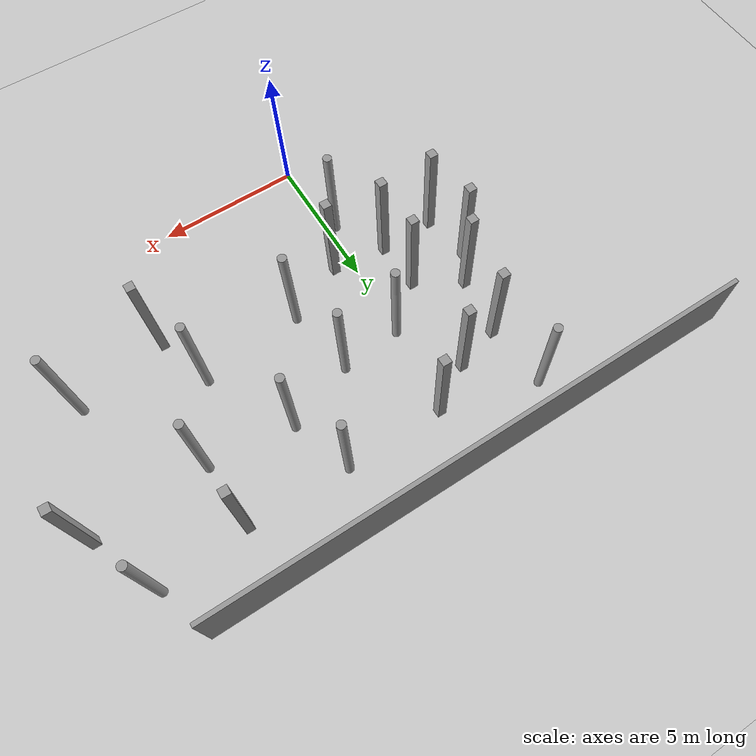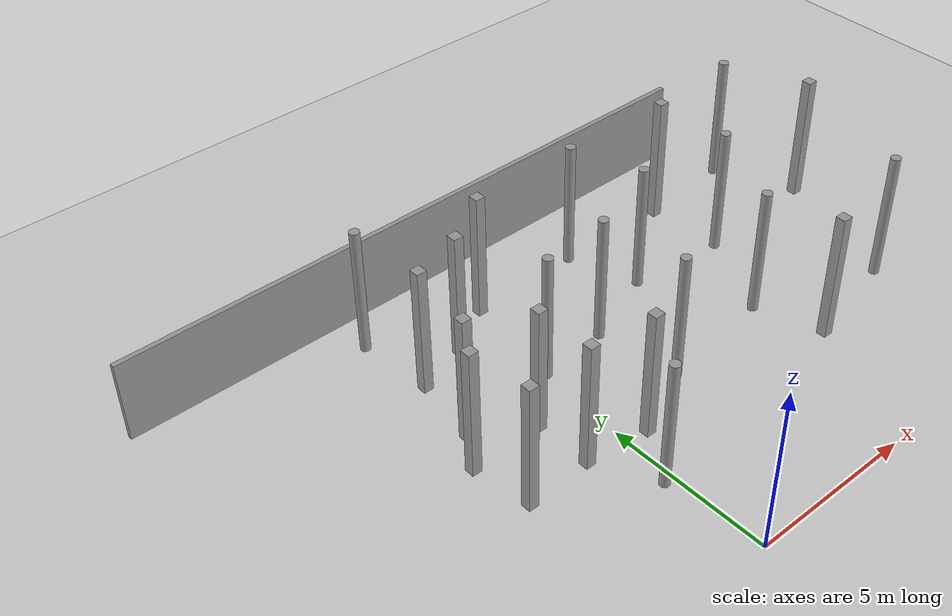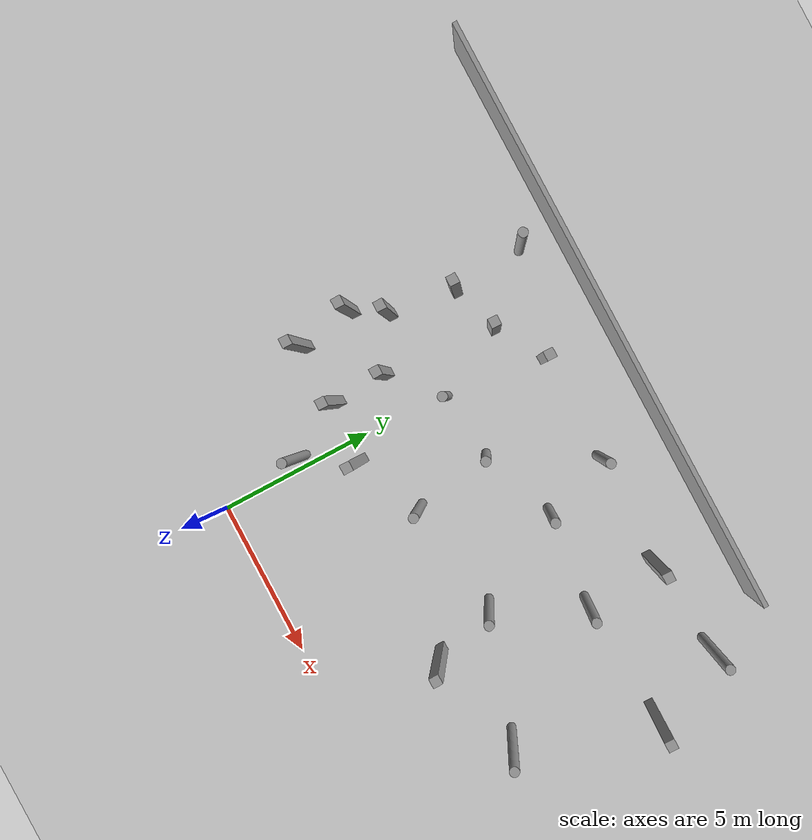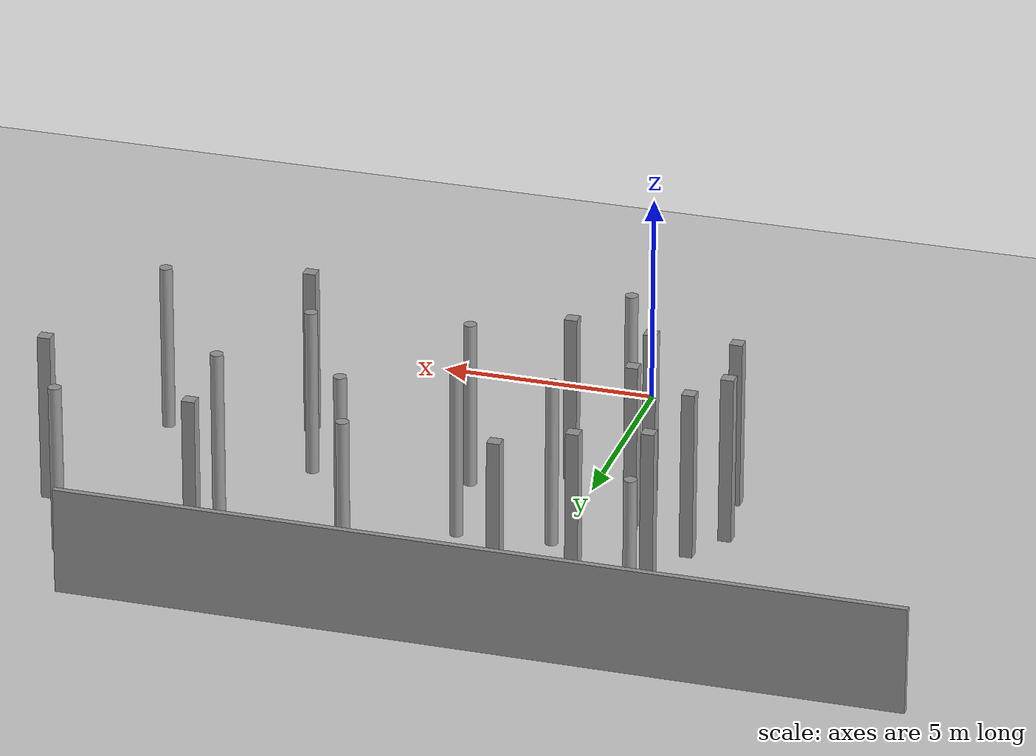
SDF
<sdf version="1.6">
 <world name="default">
  <model name="ground_plane">
   <static>1</static>
   <link name="link">
    <collision name="collision">
     <geometry><plane><normal>0 0 1</normal><size>100 100</size></plane></geometry>
    </collision>
    <visual name="visual">
     <cast_shadows>0</cast_shadows>
     <geometry><plane><normal>0 0 1</normal><size>100 100</size></plane></geometry>
     <material>
      <script><uri>file://media/materials/scripts/gazebo.material</uri><name>Gazebo/Gray</name></script>
     </material>
    </visual>
   </link>
  </model>
  <model name="unit_box">
   <link name="link">
    <inertial>
     <mass>1000</mass>
     <inertia><ixx>166.667</ixx><ixy>0</ixy><ixz>0</ixz><iyy>166.667</iyy><iyz>0</iyz><izz>166.667</izz></inertia>
    </inertial>
    <visual name="visual">
     <geometry><box><size>0.3 0.3 4</size></box></geometry>
     <material>
      <script><name>Gazebo/Grey</name><uri>file://media/materials/scripts/gazebo.material</uri></script>
      <shader type="vertex"><normal_map>__default__</normal_map></shader>
      <ambient>0.3 0.3 0.3 1</ambient>
      <diffuse>0.7 0.7 0.7 1</diffuse>
      <specular>0.01 0.01 0.01 1</specular>
      <emissive>0 0 0 1</emissive>
     </material>
    </visual>
    <collision name="collision">
     <geometry><box><size>0.3 0.3 4</size></box></geometry>
     <surface>
      <friction>
       <ode><mu>1</mu><mu2>1</mu2><fdir1>0 0 0</fdir1><slip1>0</slip1><slip2>0</slip2></ode>
       <torsional>
        <coefficient>1</coefficient>
        <patch_radius>0</patch_radius>
        <surface_radius>0</surface_radius>
        <use_patch_radius>1</use_patch_radius>
        <ode><slip>0</slip></ode>
       </torsional>
      </friction>
      <bounce><restitution_coefficient>0</restitution_coefficient><threshold>1e+06</threshold></bounce>
      <contact>
       <collide_without_contact>0</collide_without_contact>
       <collide_without_contact_bitmask>1</collide_without_contact_bitmask>
       <collide_bitmask>1</collide_bitmask>
       <ode>
        <soft_cfm>0</soft_cfm>
        <soft_erp>0.2</soft_erp>
        <kp>1e+13</kp>
        <kd>1</kd>
        <max_vel>0.01</max_vel>
        <min_depth>0</min_depth>
       </ode>
       <bullet>
        <split_impulse>1</split_impulse>
        <split_impulse_penetration_threshold>-0.01</split_impulse_penetration_threshold>
        <soft_cfm>0</soft_cfm>
        <soft_erp>0.2</soft_erp>
        <kp>1e+13</kp>
        <kd>1</kd>
       </bullet>
      </contact>
     </surface>
    </collision>
   </link>
   <static>0</static>
   <pose>-1.26728 4.71524 2 -8e-06 2e-06 -0.001346</pose>
  </model>
  <model name="unit_box_clone_1">
   <link name="link">
    <inertial>
     <mass>1000</mass>
     <inertia><ixx>166.667</ixx><ixy>0</ixy><ixz>0</ixz><iyy>166.667</iyy><iyz>0</iyz><izz>166.667</izz></inertia>
    </inertial>
    <visual name="visual">
     <geometry><box><size>0.3 0.3 4</size></box></geometry>
     <material>
      <script><name>Gazebo/Grey</name><uri>file://media/materials/scripts/gazebo.material</uri></script>
      <shader type="vertex"><normal_map>__default__</normal_map></shader>
      <ambient>0.3 0.3 0.3 1</ambient>
      <diffuse>0.7 0.7 0.7 1</diffuse>
      <specular>0.01 0.01 0.01 1</specular>
      <emissive>0 0 0 1</emissive>
     </material>
    </visual>
    <collision name="collision">
     <geometry><box><size>0.3 0.3 4</size></box></geometry>
     <surface>
      <friction>
       <ode><mu>1</mu><mu2>1</mu2><fdir1>0 0 0</fdir1><slip1>0</slip1><slip2>0</slip2></ode>
       <torsional>
        <coefficient>1</coefficient>
        <patch_radius>0</patch_radius>
        <surface_radius>0</surface_radius>
        <use_patch_radius>1</use_patch_radius>
        <ode><slip>0</slip></ode>
       </torsional>
      </friction>
      <bounce><restitution_coefficient>0</restitution_coefficient><threshold>1e+06</threshold></bounce>
      <contact>
       <collide_without_contact>0</collide_without_contact>
       <collide_without_contact_bitmask>1</collide_without_contact_bitmask>
       <collide_bitmask>1</collide_bitmask>
       <ode>
        <soft_cfm>0</soft_cfm>
        <soft_erp>0.2</soft_erp>
        <kp>1e+13</kp>
        <kd>1</kd>
        <max_vel>0.01</max_vel>
        <min_depth>0</min_depth>
       </ode>
       <bullet>
        <split_impulse>1</split_impulse>
        <split_impulse_penetration_threshold>-0.01</split_impulse_penetration_threshold>
        <soft_cfm>0</soft_cfm>
        <soft_erp>0.2</soft_erp>
        <kp>1e+13</kp>
        <kd>1</kd>
       </bullet>
      </contact>
     </surface>
    </collision>
   </link>
   <static>0</static>
   <pose>-2.89926 7.41393 2 1.2e-05 -1.2e-05 -0.004598</pose>
  </model>
  <model name="unit_box_clone_5">
   <link name="link">
    <inertial>
     <mass>1000</mass>
     <inertia><ixx>166.667</ixx><ixy>0</ixy><ixz>0</ixz><iyy>166.667</iyy><iyz>0</iyz><izz>166.667</izz></inertia>
    </inertial>
    <visual name="visual">
     <geometry><box><size>0.3 0.3 4</size></box></geometry>
     <material>
      <script><name>Gazebo/Grey</name><uri>file://media/materials/scripts/gazebo.material</uri></script>
      <shader type="vertex"><normal_map>__default__</normal_map></shader>
      <ambient>0.3 0.3 0.3 1</ambient>
      <diffuse>0.7 0.7 0.7 1</diffuse>
      <specular>0.01 0.01 0.01 1</specular>
      <emissive>0 0 0 1</emissive>
     </material>
    </visual>
    <collision name="collision">
     <geometry><box><size>0.3 0.3 4</size></box></geometry>
     <surface>
      <friction>
       <ode><mu>1</mu><mu2>1</mu2><fdir1>0 0 0</fdir1><slip1>0</slip1><slip2>0</slip2></ode>
       <torsional>
        <coefficient>1</coefficient>
        <patch_radius>0</patch_radius>
        <surface_radius>0</surface_radius>
        <use_patch_radius>1</use_patch_radius>
        <ode><slip>0</slip></ode>
       </torsional>
      </friction>
      <bounce><restitution_coefficient>0</restitution_coefficient><threshold>1e+06</threshold></bounce>
      <contact>
       <collide_without_contact>0</collide_without_contact>
       <collide_without_contact_bitmask>1</collide_without_contact_bitmask>
       <collide_bitmask>1</collide_bitmask>
       <ode>
        <soft_cfm>0</soft_cfm>
        <soft_erp>0.2</soft_erp>
        <kp>1e+13</kp>
        <kd>1</kd>
        <max_vel>0.01</max_vel>
        <min_depth>0</min_depth>
       </ode>
       <bullet>
        <split_impulse>1</split_impulse>
        <split_impulse_penetration_threshold>-0.01</split_impulse_penetration_threshold>
        <soft_cfm>0</soft_cfm>
        <soft_erp>0.2</soft_erp>
        <kp>1e+13</kp>
        <kd>1</kd>
       </bullet>
      </contact>
     </surface>
    </collision>
   </link>
   <static>0</static>
   <pose>7.51087 10.9218 2 -6e-06 -0 -0.013801</pose>
  </model>
  <model name="unit_box_clone_6">
   <link name="link">
    <inertial>
     <mass>1000</mass>
     <inertia><ixx>166.667</ixx><ixy>0</ixy><ixz>0</ixz><iyy>166.667</iyy><iyz>0</iyz><izz>166.667</izz></inertia>
    </inertial>
    <visual name="visual">
     <geometry><box><size>0.3 0.3 4</size></box></geometry>
     <material>
      <script><name>Gazebo/Grey</name><uri>file://media/materials/scripts/gazebo.material</uri></script>
      <shader type="vertex"><normal_map>__default__</normal_map></shader>
      <ambient>0.3 0.3 0.3 1</ambient>
      <diffuse>0.7 0.7 0.7 1</diffuse>
      <specular>0.01 0.01 0.01 1</specular>
      <emissive>0 0 0 1</emissive>
     </material>
    </visual>
    <collision name="collision">
     <geometry><box><size>0.3 0.3 4</size></box></geometry>
     <surface>
      <friction>
       <ode><mu>1</mu><mu2>1</mu2><fdir1>0 0 0</fdir1><slip1>0</slip1><slip2>0</slip2></ode>
       <torsional>
        <coefficient>1</coefficient>
        <patch_radius>0</patch_radius>
        <surface_radius>0</surface_radius>
        <use_patch_radius>1</use_patch_radius>
        <ode><slip>0</slip></ode>
       </torsional>
      </friction>
      <bounce><restitution_coefficient>0</restitution_coefficient><threshold>1e+06</threshold></bounce>
      <contact>
       <collide_without_contact>0</collide_without_contact>
       <collide_without_contact_bitmask>1</collide_without_contact_bitmask>
       <collide_bitmask>1</collide_bitmask>
       <ode>
        <soft_cfm>0</soft_cfm>
        <soft_erp>0.2</soft_erp>
        <kp>1e+13</kp>
        <kd>1</kd>
        <max_vel>0.01</max_vel>
        <min_depth>0</min_depth>
       </ode>
       <bullet>
        <split_impulse>1</split_impulse>
        <split_impulse_penetration_threshold>-0.01</split_impulse_penetration_threshold>
        <soft_cfm>0</soft_cfm>
        <soft_erp>0.2</soft_erp>
        <kp>1e+13</kp>
        <kd>1</kd>
       </bullet>
      </contact>
     </surface>
    </collision>
   </link>
   <static>0</static>
   <pose>11.6419 8.80512 2 -2.9e-05 -0 -0.005214</pose>
  </model>
  <model name="unit_box_clone_19">
   <link name="link">
    <inertial>
     <mass>1000</mass>
     <inertia><ixx>166.667</ixx><ixy>0</ixy><ixz>0</ixz><iyy>166.667</iyy><iyz>0</iyz><izz>166.667</izz></inertia>
    </inertial>
    <visual name="visual">
     <geometry><box><size>0.3 0.3 4</size></box></geometry>
     <material>
      <script><name>Gazebo/Grey</name><uri>file://media/materials/scripts/gazebo.material</uri></script>
      <shader type="vertex"><normal_map>__default__</normal_map></shader>
      <ambient>0.3 0.3 0.3 1</ambient>
      <diffuse>0.7 0.7 0.7 1</diffuse>
      <specular>0.01 0.01 0.01 1</specular>
      <emissive>0 0 0 1</emissive>
     </material>
    </visual>
    <collision name="collision">
     <geometry><box><size>0.3 0.3 4</size></box></geometry>
     <surface>
      <friction>
       <ode><mu>1</mu><mu2>1</mu2><fdir1>0 0 0</fdir1><slip1>0</slip1><slip2>0</slip2></ode>
       <torsional>
        <coefficient>1</coefficient>
        <patch_radius>0</patch_radius>
        <surface_radius>0</surface_radius>
        <use_patch_radius>1</use_patch_radius>
        <ode><slip>0</slip></ode>
       </torsional>
      </friction>
      <bounce><restitution_coefficient>0</restitution_coefficient><threshold>1e+06</threshold></bounce>
      <contact>
       <collide_without_contact>0</collide_without_contact>
       <collide_without_contact_bitmask>1</collide_without_contact_bitmask>
       <collide_bitmask>1</collide_bitmask>
       <ode>
        <soft_cfm>0</soft_cfm>
        <soft_erp>0.2</soft_erp>
        <kp>1e+13</kp>
        <kd>1</kd>
        <max_vel>0.01</max_vel>
        <min_depth>0</min_depth>
       </ode>
       <bullet>
        <split_impulse>1</split_impulse>
        <split_impulse_penetration_threshold>-0.01</split_impulse_penetration_threshold>
        <soft_cfm>0</soft_cfm>
        <soft_erp>0.2</soft_erp>
        <kp>1e+13</kp>
        <kd>1</kd>
       </bullet>
      </contact>
     </surface>
    </collision>
   </link>
   <static>0</static>
   <pose>-1.32795 6.44933 2 -8e-06 2e-06 -0.001346</pose>
  </model>
  <model name="unit_box_clone_20">
   <link name="link">
    <inertial>
     <mass>1000</mass>
     <inertia><ixx>166.667</ixx><ixy>0</ixy><ixz>0</ixz><iyy>166.667</iyy><iyz>0</iyz><izz>166.667</izz></inertia>
    </inertial>
    <visual name="visual">
     <geometry><box><size>0.3 0.3 4</size></box></geometry>
     <material>
      <script><name>Gazebo/Grey</name><uri>file://media/materials/scripts/gazebo.material</uri></script>
      <shader type="vertex"><normal_map>__default__</normal_map></shader>
      <ambient>0.3 0.3 0.3 1</ambient>
      <diffuse>0.7 0.7 0.7 1</diffuse>
      <specular>0.01 0.01 0.01 1</specular>
      <emissive>0 0 0 1</emissive>
     </material>
    </visual>
    <collision name="collision">
     <geometry><box><size>0.3 0.3 4</size></box></geometry>
     <surface>
      <friction>
       <ode><mu>1</mu><mu2>1</mu2><fdir1>0 0 0</fdir1><slip1>0</slip1><slip2>0</slip2></ode>
       <torsional>
        <coefficient>1</coefficient>
        <patch_radius>0</patch_radius>
        <surface_radius>0</surface_radius>
        <use_patch_radius>1</use_patch_radius>
        <ode><slip>0</slip></ode>
       </torsional>
      </friction>
      <bounce><restitution_coefficient>0</restitution_coefficient><threshold>1e+06</threshold></bounce>
      <contact>
       <collide_without_contact>0</collide_without_contact>
       <collide_without_contact_bitmask>1</collide_without_contact_bitmask>
       <collide_bitmask>1</collide_bitmask>
       <ode>
        <soft_cfm>0</soft_cfm>
        <soft_erp>0.2</soft_erp>
        <kp>1e+13</kp>
        <kd>1</kd>
        <max_vel>0.01</max_vel>
        <min_depth>0</min_depth>
       </ode>
       <bullet>
        <split_impulse>1</split_impulse>
        <split_impulse_penetration_threshold>-0.01</split_impulse_penetration_threshold>
        <soft_cfm>0</soft_cfm>
        <soft_erp>0.2</soft_erp>
        <kp>1e+13</kp>
        <kd>1</kd>
       </bullet>
      </contact>
     </surface>
    </collision>
   </link>
   <static>0</static>
   <pose>0.641894 4.48444 2 9e-06 1e-06 0.001867</pose>
  </model>
  <model name="unit_box_clone_21">
   <link name="link">
    <inertial>
     <mass>1000</mass>
     <inertia><ixx>166.667</ixx><ixy>0</ixy><ixz>0</ixz><iyy>166.667</iyy><iyz>0</iyz><izz>166.667</izz></inertia>
    </inertial>
    <visual name="visual">
     <geometry><box><size>0.3 0.3 4</size></box></geometry>
     <material>
      <script><name>Gazebo/Grey</name><uri>file://media/materials/scripts/gazebo.material</uri></script>
      <shader type="vertex"><normal_map>__default__</normal_map></shader>
      <ambient>0.3 0.3 0.3 1</ambient>
      <diffuse>0.7 0.7 0.7 1</diffuse>
      <specular>0.01 0.01 0.01 1</specular>
      <emissive>0 0 0 1</emissive>
     </material>
    </visual>
    <collision name="collision">
     <geometry><box><size>0.3 0.3 4</size></box></geometry>
     <surface>
      <friction>
       <ode><mu>1</mu><mu2>1</mu2><fdir1>0 0 0</fdir1><slip1>0</slip1><slip2>0</slip2></ode>
       <torsional>
        <coefficient>1</coefficient>
        <patch_radius>0</patch_radius>
        <surface_radius>0</surface_radius>
        <use_patch_radius>1</use_patch_radius>
        <ode><slip>0</slip></ode>
       </torsional>
      </friction>
      <bounce><restitution_coefficient>0</restitution_coefficient><threshold>1e+06</threshold></bounce>
      <contact>
       <collide_without_contact>0</collide_without_contact>
       <collide_without_contact_bitmask>1</collide_without_contact_bitmask>
       <collide_bitmask>1</collide_bitmask>
       <ode>
        <soft_cfm>0</soft_cfm>
        <soft_erp>0.2</soft_erp>
        <kp>1e+13</kp>
        <kd>1</kd>
        <max_vel>0.01</max_vel>
        <min_depth>0</min_depth>
       </ode>
       <bullet>
        <split_impulse>1</split_impulse>
        <split_impulse_penetration_threshold>-0.01</split_impulse_penetration_threshold>
        <soft_cfm>0</soft_cfm>
        <soft_erp>0.2</soft_erp>
        <kp>1e+13</kp>
        <kd>1</kd>
       </bullet>
      </contact>
     </surface>
    </collision>
   </link>
   <static>0</static>
   <pose>-2.57154 9.52529 2 4e-06 -3e-06 -0.005886</pose>
  </model>
  <model name="unit_box_clone_22">
   <link name="link">
    <inertial>
     <mass>1000</mass>
     <inertia><ixx>166.667</ixx><ixy>0</ixy><ixz>0</ixz><iyy>166.667</iyy><iyz>0</iyz><izz>166.667</izz></inertia>
    </inertial>
    <visual name="visual">
     <geometry><box><size>0.3 0.3 4</size></box></geometry>
     <material>
      <script><name>Gazebo/Grey</name><uri>file://media/materials/scripts/gazebo.material</uri></script>
      <shader type="vertex"><normal_map>__default__</normal_map></shader>
      <ambient>0.3 0.3 0.3 1</ambient>
      <diffuse>0.7 0.7 0.7 1</diffuse>
      <specular>0.01 0.01 0.01 1</specular>
      <emissive>0 0 0 1</emissive>
     </material>
    </visual>
    <collision name="collision">
     <geometry><box><size>0.3 0.3 4</size></box></geometry>
     <surface>
      <friction>
       <ode><mu>1</mu><mu2>1</mu2><fdir1>0 0 0</fdir1><slip1>0</slip1><slip2>0</slip2></ode>
       <torsional>
        <coefficient>1</coefficient>
        <patch_radius>0</patch_radius>
        <surface_radius>0</surface_radius>
        <use_patch_radius>1</use_patch_radius>
        <ode><slip>0</slip></ode>
       </torsional>
      </friction>
      <bounce><restitution_coefficient>0</restitution_coefficient><threshold>1e+06</threshold></bounce>
      <contact>
       <collide_without_contact>0</collide_without_contact>
       <collide_without_contact_bitmask>1</collide_without_contact_bitmask>
       <collide_bitmask>1</collide_bitmask>
       <ode>
        <soft_cfm>0</soft_cfm>
        <soft_erp>0.2</soft_erp>
        <kp>1e+13</kp>
        <kd>1</kd>
        <max_vel>0.01</max_vel>
        <min_depth>0</min_depth>
       </ode>
       <bullet>
        <split_impulse>1</split_impulse>
        <split_impulse_penetration_threshold>-0.01</split_impulse_penetration_threshold>
        <soft_cfm>0</soft_cfm>
        <soft_erp>0.2</soft_erp>
        <kp>1e+13</kp>
        <kd>1</kd>
       </bullet>
      </contact>
     </surface>
    </collision>
   </link>
   <static>0</static>
   <pose>-0.999863 10.0001 2 -5e-06 -1e-05 -0.012782</pose>
  </model>
  <model name="unit_box_clone_25">
   <link name="link">
    <inertial>
     <mass>1000</mass>
     <inertia><ixx>166.667</ixx><ixy>0</ixy><ixz>0</ixz><iyy>166.667</iyy><iyz>0</iyz><izz>166.667</izz></inertia>
    </inertial>
    <visual name="visual">
     <geometry><box><size>0.3 0.3 4</size></box></geometry>
     <material>
      <script><name>Gazebo/Grey</name><uri>file://media/materials/scripts/gazebo.material</uri></script>
      <shader type="vertex"><normal_map>__default__</normal_map></shader>
      <ambient>0.3 0.3 0.3 1</ambient>
      <diffuse>0.7 0.7 0.7 1</diffuse>
      <specular>0.01 0.01 0.01 1</specular>
      <emissive>0 0 0 1</emissive>
     </material>
    </visual>
    <collision name="collision">
     <geometry><box><size>0.3 0.3 4</size></box></geometry>
     <surface>
      <friction>
       <ode><mu>1</mu><mu2>1</mu2><fdir1>0 0 0</fdir1><slip1>0</slip1><slip2>0</slip2></ode>
       <torsional>
        <coefficient>1</coefficient>
        <patch_radius>0</patch_radius>
        <surface_radius>0</surface_radius>
        <use_patch_radius>1</use_patch_radius>
        <ode><slip>0</slip></ode>
       </torsional>
      </friction>
      <bounce><restitution_coefficient>0</restitution_coefficient><threshold>1e+06</threshold></bounce>
      <contact>
       <collide_without_contact>0</collide_without_contact>
       <collide_without_contact_bitmask>1</collide_without_contact_bitmask>
       <collide_bitmask>1</collide_bitmask>
       <ode>
        <soft_cfm>0</soft_cfm>
        <soft_erp>0.2</soft_erp>
        <kp>1e+13</kp>
        <kd>1</kd>
        <max_vel>0.01</max_vel>
        <min_depth>0</min_depth>
       </ode>
       <bullet>
        <split_impulse>1</split_impulse>
        <split_impulse_penetration_threshold>-0.01</split_impulse_penetration_threshold>
        <soft_cfm>0</soft_cfm>
        <soft_erp>0.2</soft_erp>
        <kp>1e+13</kp>
        <kd>1</kd>
       </bullet>
      </contact>
     </surface>
    </collision>
   </link>
   <static>0</static>
   <pose>-3.52144 6.42311 2 -3e-06 1.3e-05 -0.006057</pose>
  </model>
  <model name="unit_box_clone_26">
   <link name="link">
    <inertial>
     <mass>1000</mass>
     <inertia><ixx>166.667</ixx><ixy>0</ixy><ixz>0</ixz><iyy>166.667</iyy><iyz>0</iyz><izz>166.667</izz></inertia>
    </inertial>
    <visual name="visual">
     <geometry><box><size>0.3 0.3 4</size></box></geometry>
     <material>
      <script><name>Gazebo/Grey</name><uri>file://media/materials/scripts/gazebo.material</uri></script>
      <shader type="vertex"><normal_map>__default__</normal_map></shader>
      <ambient>0.3 0.3 0.3 1</ambient>
      <diffuse>0.7 0.7 0.7 1</diffuse>
      <specular>0.01 0.01 0.01 1</specular>
      <emissive>0 0 0 1</emissive>
     </material>
    </visual>
    <collision name="collision">
     <geometry><box><size>0.3 0.3 4</size></box></geometry>
     <surface>
      <friction>
       <ode><mu>1</mu><mu2>1</mu2><fdir1>0 0 0</fdir1><slip1>0</slip1><slip2>0</slip2></ode>
       <torsional>
        <coefficient>1</coefficient>
        <patch_radius>0</patch_radius>
        <surface_radius>0</surface_radius>
        <use_patch_radius>1</use_patch_radius>
        <ode><slip>0</slip></ode>
       </torsional>
      </friction>
      <bounce><restitution_coefficient>0</restitution_coefficient><threshold>1e+06</threshold></bounce>
      <contact>
       <collide_without_contact>0</collide_without_contact>
       <collide_without_contact_bitmask>1</collide_without_contact_bitmask>
       <collide_bitmask>1</collide_bitmask>
       <ode>
        <soft_cfm>0</soft_cfm>
        <soft_erp>0.2</soft_erp>
        <kp>1e+13</kp>
        <kd>1</kd>
        <max_vel>0.01</max_vel>
        <min_depth>0</min_depth>
       </ode>
       <bullet>
        <split_impulse>1</split_impulse>
        <split_impulse_penetration_threshold>-0.01</split_impulse_penetration_threshold>
        <soft_cfm>0</soft_cfm>
        <soft_erp>0.2</soft_erp>
        <kp>1e+13</kp>
        <kd>1</kd>
       </bullet>
      </contact>
     </surface>
    </collision>
   </link>
   <static>0</static>
   <pose>-3.2416 4.64167 2.00001 -4.2e-05 -5.6e-05 -0.001683</pose>
  </model>
  <model name="unit_cylinder">
   <link name="link">
    <inertial>
     <mass>1000</mass>
     <inertia><ixx>145.833</ixx><ixy>0</ixy><ixz>0</ixz><iyy>145.833</iyy><iyz>0</iyz><izz>125</izz></inertia>
    </inertial>
    <visual name="visual">
     <geometry><cylinder><radius>0.15</radius><length>4</length></cylinder></geometry>
     <material>
      <script><name>Gazebo/Grey</name><uri>file://media/materials/scripts/gazebo.material</uri></script>
      <shader type="vertex"><normal_map>__default__</normal_map></shader>
      <ambient>0.3 0.3 0.3 1</ambient>
      <diffuse>0.7 0.7 0.7 1</diffuse>
      <specular>0.01 0.01 0.01 1</specular>
      <emissive>0 0 0 1</emissive>
     </material>
    </visual>
    <collision name="collision">
     <geometry><cylinder><radius>0.15</radius><length>4</length></cylinder></geometry>
     <surface>
      <friction>
       <ode><mu>1</mu><mu2>1</mu2><fdir1>0 0 0</fdir1><slip1>0</slip1><slip2>0</slip2></ode>
       <torsional>
        <coefficient>1</coefficient>
        <patch_radius>0</patch_radius>
        <surface_radius>0</surface_radius>
        <use_patch_radius>1</use_patch_radius>
        <ode><slip>0</slip></ode>
       </torsional>
      </friction>
      <bounce><restitution_coefficient>0</restitution_coefficient><threshold>1e+06</threshold></bounce>
      <contact>
       <collide_without_contact>0</collide_without_contact>
       <collide_without_contact_bitmask>1</collide_without_contact_bitmask>
       <collide_bitmask>1</collide_bitmask>
       <ode>
        <soft_cfm>0</soft_cfm>
        <soft_erp>0.2</soft_erp>
        <kp>1e+13</kp>
        <kd>1</kd>
        <max_vel>0.01</max_vel>
        <min_depth>0</min_depth>
       </ode>
       <bullet>
        <split_impulse>1</split_impulse>
        <split_impulse_penetration_threshold>-0.01</split_impulse_penetration_threshold>
        <soft_cfm>0</soft_cfm>
        <soft_erp>0.2</soft_erp>
        <kp>1e+13</kp>
        <kd>1</kd>
       </bullet>
      </contact>
     </surface>
    </collision>
   </link>
   <static>0</static>
   <pose>2.73984 5.46943 1.99998 -1e-06 1e-06 -0.087106</pose>
  </model>
  <model name="unit_cylinder_clone_3">
   <link name="link">
    <inertial>
     <mass>1000</mass>
     <inertia><ixx>145.833</ixx><ixy>0</ixy><ixz>0</ixz><iyy>145.833</iyy><iyz>0</iyz><izz>125</izz></inertia>
    </inertial>
    <visual name="visual">
     <geometry><cylinder><radius>0.15</radius><length>4</length></cylinder></geometry>
     <material>
      <script><name>Gazebo/Grey</name><uri>file://media/materials/scripts/gazebo.material</uri></script>
      <shader type="vertex"><normal_map>__default__</normal_map></shader>
      <ambient>0.3 0.3 0.3 1</ambient>
      <diffuse>0.7 0.7 0.7 1</diffuse>
      <specular>0.01 0.01 0.01 1</specular>
      <emissive>0 0 0 1</emissive>
     </material>
    </visual>
    <collision name="collision">
     <geometry><cylinder><radius>0.15</radius><length>4</length></cylinder></geometry>
     <surface>
      <friction>
       <ode><mu>1</mu><mu2>1</mu2><fdir1>0 0 0</fdir1><slip1>0</slip1><slip2>0</slip2></ode>
       <torsional>
        <coefficient>1</coefficient>
        <patch_radius>0</patch_radius>
        <surface_radius>0</surface_radius>
        <use_patch_radius>1</use_patch_radius>
        <ode><slip>0</slip></ode>
       </torsional>
      </friction>
      <bounce><restitution_coefficient>0</restitution_coefficient><threshold>1e+06</threshold></bounce>
      <contact>
       <collide_without_contact>0</collide_without_contact>
       <collide_without_contact_bitmask>1</collide_without_contact_bitmask>
       <collide_bitmask>1</collide_bitmask>
       <ode>
        <soft_cfm>0</soft_cfm>
        <soft_erp>0.2</soft_erp>
        <kp>1e+13</kp>
        <kd>1</kd>
        <max_vel>0.01</max_vel>
        <min_depth>0</min_depth>
       </ode>
       <bullet>
        <split_impulse>1</split_impulse>
        <split_impulse_penetration_threshold>-0.01</split_impulse_penetration_threshold>
        <soft_cfm>0</soft_cfm>
        <soft_erp>0.2</soft_erp>
        <kp>1e+13</kp>
        <kd>1</kd>
       </bullet>
      </contact>
     </surface>
    </collision>
   </link>
   <static>0</static>
   <pose>0.147144 7.75793 1.99998 -1e-06 -1e-06 -0.087613</pose>
  </model>
  <model name="unit_cylinder_clone_4">
   <link name="link">
    <inertial>
     <mass>1000</mass>
     <inertia><ixx>145.833</ixx><ixy>0</ixy><ixz>0</ixz><iyy>145.833</iyy><iyz>0</iyz><izz>125</izz></inertia>
    </inertial>
    <visual name="visual">
     <geometry><cylinder><radius>0.15</radius><length>4</length></cylinder></geometry>
     <material>
      <script><name>Gazebo/Grey</name><uri>file://media/materials/scripts/gazebo.material</uri></script>
      <shader type="vertex"><normal_map>__default__</normal_map></shader>
      <ambient>0.3 0.3 0.3 1</ambient>
      <diffuse>0.7 0.7 0.7 1</diffuse>
      <specular>0.01 0.01 0.01 1</specular>
      <emissive>0 0 0 1</emissive>
     </material>
    </visual>
    <collision name="collision">
     <geometry><cylinder><radius>0.15</radius><length>4</length></cylinder></geometry>
     <surface>
      <friction>
       <ode><mu>1</mu><mu2>1</mu2><fdir1>0 0 0</fdir1><slip1>0</slip1><slip2>0</slip2></ode>
       <torsional>
        <coefficient>1</coefficient>
        <patch_radius>0</patch_radius>
        <surface_radius>0</surface_radius>
        <use_patch_radius>1</use_patch_radius>
        <ode><slip>0</slip></ode>
       </torsional>
      </friction>
      <bounce><restitution_coefficient>0</restitution_coefficient><threshold>1e+06</threshold></bounce>
      <contact>
       <collide_without_contact>0</collide_without_contact>
       <collide_without_contact_bitmask>1</collide_without_contact_bitmask>
       <collide_bitmask>1</collide_bitmask>
       <ode>
        <soft_cfm>0</soft_cfm>
        <soft_erp>0.2</soft_erp>
        <kp>1e+13</kp>
        <kd>1</kd>
        <max_vel>0.01</max_vel>
        <min_depth>0</min_depth>
       </ode>
       <bullet>
        <split_impulse>1</split_impulse>
        <split_impulse_penetration_threshold>-0.01</split_impulse_penetration_threshold>
        <soft_cfm>0</soft_cfm>
        <soft_erp>0.2</soft_erp>
        <kp>1e+13</kp>
        <kd>1</kd>
       </bullet>
      </contact>
     </surface>
    </collision>
   </link>
   <static>0</static>
   <pose>6.34447 5.91446 1.99998 -1e-06 1e-06 -0.081084</pose>
  </model>
  <model name="unit_cylinder_clone_5">
   <link name="link">
    <inertial>
     <mass>1000</mass>
     <inertia><ixx>145.833</ixx><ixy>0</ixy><ixz>0</ixz><iyy>145.833</iyy><iyz>0</iyz><izz>125</izz></inertia>
    </inertial>
    <visual name="visual">
     <geometry><cylinder><radius>0.15</radius><length>4</length></cylinder></geometry>
     <material>
      <script><name>Gazebo/Grey</name><uri>file://media/materials/scripts/gazebo.material</uri></script>
      <shader type="vertex"><normal_map>__default__</normal_map></shader>
      <ambient>0.3 0.3 0.3 1</ambient>
      <diffuse>0.7 0.7 0.7 1</diffuse>
      <specular>0.01 0.01 0.01 1</specular>
      <emissive>0 0 0 1</emissive>
     </material>
    </visual>
    <collision name="collision">
     <geometry><cylinder><radius>0.15</radius><length>4</length></cylinder></geometry>
     <surface>
      <friction>
       <ode><mu>1</mu><mu2>1</mu2><fdir1>0 0 0</fdir1><slip1>0</slip1><slip2>0</slip2></ode>
       <torsional>
        <coefficient>1</coefficient>
        <patch_radius>0</patch_radius>
        <surface_radius>0</surface_radius>
        <use_patch_radius>1</use_patch_radius>
        <ode><slip>0</slip></ode>
       </torsional>
      </friction>
      <bounce><restitution_coefficient>0</restitution_coefficient><threshold>1e+06</threshold></bounce>
      <contact>
       <collide_without_contact>0</collide_without_contact>
       <collide_without_contact_bitmask>1</collide_without_contact_bitmask>
       <collide_bitmask>1</collide_bitmask>
       <ode>
        <soft_cfm>0</soft_cfm>
        <soft_erp>0.2</soft_erp>
        <kp>1e+13</kp>
        <kd>1</kd>
        <max_vel>0.01</max_vel>
        <min_depth>0</min_depth>
       </ode>
       <bullet>
        <split_impulse>1</split_impulse>
        <split_impulse_penetration_threshold>-0.01</split_impulse_penetration_threshold>
        <soft_cfm>0</soft_cfm>
        <soft_erp>0.2</soft_erp>
        <kp>1e+13</kp>
        <kd>1</kd>
       </bullet>
      </contact>
     </surface>
    </collision>
   </link>
   <static>0</static>
   <pose>4.70924 8.87127 1.99998 -2e-06 1e-06 -0.079524</pose>
  </model>
  <model name="unit_box_clone_20_clone">
   <link name="link">
    <inertial>
     <mass>1000</mass>
     <inertia><ixx>166.667</ixx><ixy>0</ixy><ixz>0</ixz><iyy>166.667</iyy><iyz>0</iyz><izz>166.667</izz></inertia>
    </inertial>
    <visual name="visual">
     <geometry><box><size>0.3 0.3 4</size></box></geometry>
     <material>
      <script><name>Gazebo/Grey</name><uri>file://media/materials/scripts/gazebo.material</uri></script>
      <shader type="vertex"><normal_map>__default__</normal_map></shader>
      <ambient>0.3 0.3 0.3 1</ambient>
      <diffuse>0.7 0.7 0.7 1</diffuse>
      <specular>0.01 0.01 0.01 1</specular>
      <emissive>0 0 0 1</emissive>
     </material>
    </visual>
    <collision name="collision">
     <geometry><box><size>0.3 0.3 4</size></box></geometry>
     <surface>
      <friction>
       <ode><mu>1</mu><mu2>1</mu2><fdir1>0 0 0</fdir1><slip1>0</slip1><slip2>0</slip2></ode>
       <torsional>
        <coefficient>1</coefficient>
        <patch_radius>0</patch_radius>
        <surface_radius>0</surface_radius>
        <use_patch_radius>1</use_patch_radius>
        <ode><slip>0</slip></ode>
       </torsional>
      </friction>
      <bounce><restitution_coefficient>0</restitution_coefficient><threshold>1e+06</threshold></bounce>
      <contact>
       <collide_without_contact>0</collide_without_contact>
       <collide_without_contact_bitmask>1</collide_without_contact_bitmask>
       <collide_bitmask>1</collide_bitmask>
       <ode>
        <soft_cfm>0</soft_cfm>
        <soft_erp>0.2</soft_erp>
        <kp>1e+13</kp>
        <kd>1</kd>
        <max_vel>0.01</max_vel>
        <min_depth>0</min_depth>
       </ode>
       <bullet>
        <split_impulse>1</split_impulse>
        <split_impulse_penetration_threshold>-0.01</split_impulse_penetration_threshold>
        <soft_cfm>0</soft_cfm>
        <soft_erp>0.2</soft_erp>
        <kp>1e+13</kp>
        <kd>1</kd>
       </bullet>
      </contact>
     </surface>
    </collision>
   </link>
   <static>0</static>
   <pose>7.00946 3.88998 2 8e-06 -1e-06 -0.0022</pose>
  </model>
  <model name="unit_cylinder_clone_1_clone_22">
   <link name="link">
    <inertial>
     <mass>1000</mass>
     <inertia><ixx>145.833</ixx><ixy>0</ixy><ixz>0</ixz><iyy>145.833</iyy><iyz>0</iyz><izz>125</izz></inertia>
    </inertial>
    <visual name="visual">
     <geometry><cylinder><radius>0.15</radius><length>4</length></cylinder></geometry>
     <material>
      <script><name>Gazebo/Grey</name><uri>file://media/materials/scripts/gazebo.material</uri></script>
      <shader type="vertex"><normal_map>__default__</normal_map></shader>
      <ambient>0.3 0.3 0.3 1</ambient>
      <diffuse>0.7 0.7 0.7 1</diffuse>
      <specular>0.01 0.01 0.01 1</specular>
      <emissive>0 0 0 1</emissive>
     </material>
    </visual>
    <collision name="collision">
     <geometry><cylinder><radius>0.15</radius><length>4</length></cylinder></geometry>
     <surface>
      <friction>
       <ode><mu>1</mu><mu2>1</mu2><fdir1>0 0 0</fdir1><slip1>0</slip1><slip2>0</slip2></ode>
       <torsional>
        <coefficient>1</coefficient>
        <patch_radius>0</patch_radius>
        <surface_radius>0</surface_radius>
        <use_patch_radius>1</use_patch_radius>
        <ode><slip>0</slip></ode>
       </torsional>
      </friction>
      <bounce><restitution_coefficient>0</restitution_coefficient><threshold>1e+06</threshold></bounce>
      <contact>
       <collide_without_contact>0</collide_without_contact>
       <collide_without_contact_bitmask>1</collide_without_contact_bitmask>
       <collide_bitmask>1</collide_bitmask>
       <ode>
        <soft_cfm>0</soft_cfm>
        <soft_erp>0.2</soft_erp>
        <kp>1e+13</kp>
        <kd>1</kd>
        <max_vel>0.01</max_vel>
        <min_depth>0</min_depth>
       </ode>
       <bullet>
        <split_impulse>1</split_impulse>
        <split_impulse_penetration_threshold>-0.01</split_impulse_penetration_threshold>
        <soft_cfm>0</soft_cfm>
        <soft_erp>0.2</soft_erp>
        <kp>1e+13</kp>
        <kd>1</kd>
       </bullet>
      </contact>
     </surface>
    </collision>
   </link>
   <static>0</static>
   <pose>10.5548 11.2256 1.99995 -0.000251 0.000106 -0.39482</pose>
  </model>
  <model name="unit_cylinder_clone_1_clone_7_clone">
   <link name="link">
    <inertial>
     <mass>1000</mass>
     <inertia><ixx>145.833</ixx><ixy>0</ixy><ixz>0</ixz><iyy>145.833</iyy><iyz>0</iyz><izz>125</izz></inertia>
    </inertial>
    <visual name="visual">
     <geometry><cylinder><radius>0.15</radius><length>4</length></cylinder></geometry>
     <material>
      <script><name>Gazebo/Grey</name><uri>file://media/materials/scripts/gazebo.material</uri></script>
      <shader type="vertex"><normal_map>__default__</normal_map></shader>
      <ambient>0.3 0.3 0.3 1</ambient>
      <diffuse>0.7 0.7 0.7 1</diffuse>
      <specular>0.01 0.01 0.01 1</specular>
      <emissive>0 0 0 1</emissive>
     </material>
    </visual>
    <collision name="collision">
     <geometry><cylinder><radius>0.15</radius><length>4</length></cylinder></geometry>
     <surface>
      <friction>
       <ode><mu>1</mu><mu2>1</mu2><fdir1>0 0 0</fdir1><slip1>0</slip1><slip2>0</slip2></ode>
       <torsional>
        <coefficient>1</coefficient>
        <patch_radius>0</patch_radius>
        <surface_radius>0</surface_radius>
        <use_patch_radius>1</use_patch_radius>
        <ode><slip>0</slip></ode>
       </torsional>
      </friction>
      <bounce><restitution_coefficient>0</restitution_coefficient><threshold>1e+06</threshold></bounce>
      <contact>
       <collide_without_contact>0</collide_without_contact>
       <collide_without_contact_bitmask>1</collide_without_contact_bitmask>
       <collide_bitmask>1</collide_bitmask>
       <ode>
        <soft_cfm>0</soft_cfm>
        <soft_erp>0.2</soft_erp>
        <kp>1e+13</kp>
        <kd>1</kd>
        <max_vel>0.01</max_vel>
        <min_depth>0</min_depth>
       </ode>
       <bullet>
        <split_impulse>1</split_impulse>
        <split_impulse_penetration_threshold>-0.01</split_impulse_penetration_threshold>
        <soft_cfm>0</soft_cfm>
        <soft_erp>0.2</soft_erp>
        <kp>1e+13</kp>
        <kd>1</kd>
       </bullet>
      </contact>
     </surface>
    </collision>
   </link>
   <static>0</static>
   <pose>3.97282 10.9955 1.99995 -0.000251 0.000106 -0.393248</pose>
  </model>
  <model name="unit_cylinder_clone_1_clone_7_clone_1">
   <link name="link">
    <inertial>
     <mass>1000</mass>
     <inertia><ixx>145.833</ixx><ixy>0</ixy><ixz>0</ixz><iyy>145.833</iyy><iyz>0</iyz><izz>125</izz></inertia>
    </inertial>
    <visual name="visual">
     <geometry><cylinder><radius>0.15</radius><length>4</length></cylinder></geometry>
     <material>
      <script><name>Gazebo/Grey</name><uri>file://media/materials/scripts/gazebo.material</uri></script>
      <shader type="vertex"><normal_map>__default__</normal_map></shader>
      <ambient>0.3 0.3 0.3 1</ambient>
      <diffuse>0.7 0.7 0.7 1</diffuse>
      <specular>0.01 0.01 0.01 1</specular>
      <emissive>0 0 0 1</emissive>
     </material>
    </visual>
    <collision name="collision">
     <geometry><cylinder><radius>0.15</radius><length>4</length></cylinder></geometry>
     <surface>
      <friction>
       <ode><mu>1</mu><mu2>1</mu2><fdir1>0 0 0</fdir1><slip1>0</slip1><slip2>0</slip2></ode>
       <torsional>
        <coefficient>1</coefficient>
        <patch_radius>0</patch_radius>
        <surface_radius>0</surface_radius>
        <use_patch_radius>1</use_patch_radius>
        <ode><slip>0</slip></ode>
       </torsional>
      </friction>
      <bounce><restitution_coefficient>0</restitution_coefficient><threshold>1e+06</threshold></bounce>
      <contact>
       <collide_without_contact>0</collide_without_contact>
       <collide_without_contact_bitmask>1</collide_without_contact_bitmask>
       <collide_bitmask>1</collide_bitmask>
       <ode>
        <soft_cfm>0</soft_cfm>
        <soft_erp>0.2</soft_erp>
        <kp>1e+13</kp>
        <kd>1</kd>
        <max_vel>0.01</max_vel>
        <min_depth>0</min_depth>
       </ode>
       <bullet>
        <split_impulse>1</split_impulse>
        <split_impulse_penetration_threshold>-0.01</split_impulse_penetration_threshold>
        <soft_cfm>0</soft_cfm>
        <soft_erp>0.2</soft_erp>
        <kp>1e+13</kp>
        <kd>1</kd>
       </bullet>
      </contact>
     </surface>
    </collision>
   </link>
   <static>0</static>
   <pose>10.2364 4.63754 1.99995 -0.000251 0.000107 -0.3888</pose>
  </model>
  <model name="unit_cylinder_clone_1_clone_7_clone_2">
   <link name="link">
    <inertial>
     <mass>1000</mass>
     <inertia><ixx>145.833</ixx><ixy>0</ixy><ixz>0</ixz><iyy>145.833</iyy><iyz>0</iyz><izz>125</izz></inertia>
    </inertial>
    <visual name="visual">
     <geometry><cylinder><radius>0.15</radius><length>4</length></cylinder></geometry>
     <material>
      <script><name>Gazebo/Grey</name><uri>file://media/materials/scripts/gazebo.material</uri></script>
      <shader type="vertex"><normal_map>__default__</normal_map></shader>
      <ambient>0.3 0.3 0.3 1</ambient>
      <diffuse>0.7 0.7 0.7 1</diffuse>
      <specular>0.01 0.01 0.01 1</specular>
      <emissive>0 0 0 1</emissive>
     </material>
    </visual>
    <collision name="collision">
     <geometry><cylinder><radius>0.15</radius><length>4</length></cylinder></geometry>
     <surface>
      <friction>
       <ode><mu>1</mu><mu2>1</mu2><fdir1>0 0 0</fdir1><slip1>0</slip1><slip2>0</slip2></ode>
       <torsional>
        <coefficient>1</coefficient>
        <patch_radius>0</patch_radius>
        <surface_radius>0</surface_radius>
        <use_patch_radius>1</use_patch_radius>
        <ode><slip>0</slip></ode>
       </torsional>
      </friction>
      <bounce><restitution_coefficient>0</restitution_coefficient><threshold>1e+06</threshold></bounce>
      <contact>
       <collide_without_contact>0</collide_without_contact>
       <collide_without_contact_bitmask>1</collide_without_contact_bitmask>
       <collide_bitmask>1</collide_bitmask>
       <ode>
        <soft_cfm>0</soft_cfm>
        <soft_erp>0.2</soft_erp>
        <kp>1e+13</kp>
        <kd>1</kd>
        <max_vel>0.01</max_vel>
        <min_depth>0</min_depth>
       </ode>
       <bullet>
        <split_impulse>1</split_impulse>
        <split_impulse_penetration_threshold>-0.01</split_impulse_penetration_threshold>
        <soft_cfm>0</soft_cfm>
        <soft_erp>0.2</soft_erp>
        <kp>1e+13</kp>
        <kd>1</kd>
       </bullet>
      </contact>
     </surface>
    </collision>
   </link>
   <static>0</static>
   <pose>-2.80817 11.8557 1.99995 -0.000251 0.000106 -0.394688</pose>
  </model>
  <model name="unit_cylinder_clone_1_clone_7_clone_10">
   <link name="link">
    <inertial>
     <mass>1000</mass>
     <inertia><ixx>145.833</ixx><ixy>0</ixy><ixz>0</ixz><iyy>145.833</iyy><iyz>0</iyz><izz>125</izz></inertia>
    </inertial>
    <visual name="visual">
     <geometry><cylinder><radius>0.15</radius><length>4</length></cylinder></geometry>
     <material>
      <script><name>Gazebo/Grey</name><uri>file://media/materials/scripts/gazebo.material</uri></script>
      <shader type="vertex"><normal_map>__default__</normal_map></shader>
      <ambient>0.3 0.3 0.3 1</ambient>
      <diffuse>0.7 0.7 0.7 1</diffuse>
      <specular>0.01 0.01 0.01 1</specular>
      <emissive>0 0 0 1</emissive>
     </material>
    </visual>
    <collision name="collision">
     <geometry><cylinder><radius>0.15</radius><length>4</length></cylinder></geometry>
     <surface>
      <friction>
       <ode><mu>1</mu><mu2>1</mu2><fdir1>0 0 0</fdir1><slip1>0</slip1><slip2>0</slip2></ode>
       <torsional>
        <coefficient>1</coefficient>
        <patch_radius>0</patch_radius>
        <surface_radius>0</surface_radius>
        <use_patch_radius>1</use_patch_radius>
        <ode><slip>0</slip></ode>
       </torsional>
      </friction>
      <bounce><restitution_coefficient>0</restitution_coefficient><threshold>1e+06</threshold></bounce>
      <contact>
       <collide_without_contact>0</collide_without_contact>
       <collide_without_contact_bitmask>1</collide_without_contact_bitmask>
       <collide_bitmask>1</collide_bitmask>
       <ode>
        <soft_cfm>0</soft_cfm>
        <soft_erp>0.2</soft_erp>
        <kp>1e+13</kp>
        <kd>1</kd>
        <max_vel>0.01</max_vel>
        <min_depth>0</min_depth>
       </ode>
       <bullet>
        <split_impulse>1</split_impulse>
        <split_impulse_penetration_threshold>-0.01</split_impulse_penetration_threshold>
        <soft_cfm>0</soft_cfm>
        <soft_erp>0.2</soft_erp>
        <kp>1e+13</kp>
        <kd>1</kd>
       </bullet>
      </contact>
     </surface>
    </collision>
   </link>
   <static>0</static>
   <pose>-0.313243 2.96779 1.99995 -0.000251 0.000107 -0.3918</pose>
  </model>
  <model name="Untitled_clone">
   <pose>0.31733 13.1156 0 0 -0 0</pose>
   <link name="Wall_3">
    <collision name="Wall_3_Collision">
     <geometry><box><size>19.25 0.15 2.5</size></box></geometry>
     <pose>0 0 1.25 0 -0 0</pose>
    </collision>
    <visual name="Wall_3_Visual">
     <pose>0 0 1.25 0 -0 0</pose>
     <geometry><box><size>19.25 0.15 2.5</size></box></geometry>
     <material>
      <script><uri>file://media/materials/scripts/gazebo.material</uri><name>Gazebo/Grey</name></script>
      <ambient>1 1 1 1</ambient>
     </material>
     <meta><layer>0</layer></meta>
    </visual>
   </link>
   <static>1</static>
  </model>
  <model name="unit_cylinder_clone_8">
   <link name="link">
    <inertial>
     <mass>1000</mass>
     <inertia><ixx>145.833</ixx><ixy>0</ixy><ixz>0</ixz><iyy>145.833</iyy><iyz>0</iyz><izz>125</izz></inertia>
    </inertial>
    <visual name="visual">
     <geometry><cylinder><radius>0.15</radius><length>4</length></cylinder></geometry>
     <material>
      <script><name>Gazebo/Grey</name><uri>file://media/materials/scripts/gazebo.material</uri></script>
      <shader type="vertex"><normal_map>__default__</normal_map></shader>
      <ambient>0.3 0.3 0.3 1</ambient>
      <diffuse>0.7 0.7 0.7 1</diffuse>
      <specular>0.01 0.01 0.01 1</specular>
      <emissive>0 0 0 1</emissive>
     </material>
    </visual>
    <collision name="collision">
     <geometry><cylinder><radius>0.15</radius><length>4</length></cylinder></geometry>
     <surface>
      <friction>
       <ode><mu>1</mu><mu2>1</mu2><fdir1>0 0 0</fdir1><slip1>0</slip1><slip2>0</slip2></ode>
       <torsional>
        <coefficient>1</coefficient>
        <patch_radius>0</patch_radius>
        <surface_radius>0</surface_radius>
        <use_patch_radius>1</use_patch_radius>
        <ode><slip>0</slip></ode>
       </torsional>
      </friction>
      <bounce><restitution_coefficient>0</restitution_coefficient><threshold>1e+06</threshold></bounce>
      <contact>
       <collide_without_contact>0</collide_without_contact>
       <collide_without_contact_bitmask>1</collide_without_contact_bitmask>
       <collide_bitmask>1</collide_bitmask>
       <ode>
        <soft_cfm>0</soft_cfm>
        <soft_erp>0.2</soft_erp>
        <kp>1e+13</kp>
        <kd>1</kd>
        <max_vel>0.01</max_vel>
        <min_depth>0</min_depth>
       </ode>
       <bullet>
        <split_impulse>1</split_impulse>
        <split_impulse_penetration_threshold>-0.01</split_impulse_penetration_threshold>
        <soft_cfm>0</soft_cfm>
        <soft_erp>0.2</soft_erp>
        <kp>1e+13</kp>
        <kd>1</kd>
       </bullet>
      </contact>
     </surface>
    </collision>
   </link>
   <static>0</static>
   <pose>2.29678 7.97097 1.99998 -2e-06 -1e-06 -0.086405</pose>
  </model>
  <model name="unit_cylinder_clone_9">
   <link name="link">
    <inertial>
     <mass>1000</mass>
     <inertia><ixx>145.833</ixx><ixy>0</ixy><ixz>0</ixz><iyy>145.833</iyy><iyz>0</iyz><izz>125</izz></inertia>
    </inertial>
    <visual name="visual">
     <geometry><cylinder><radius>0.15</radius><length>4</length></cylinder></geometry>
     <material>
      <script><name>Gazebo/Grey</name><uri>file://media/materials/scripts/gazebo.material</uri></script>
      <shader type="vertex"><normal_map>__default__</normal_map></shader>
      <ambient>0.3 0.3 0.3 1</ambient>
      <diffuse>0.7 0.7 0.7 1</diffuse>
      <specular>0.01 0.01 0.01 1</specular>
      <emissive>0 0 0 1</emissive>
     </material>
    </visual>
    <collision name="collision">
     <geometry><cylinder><radius>0.15</radius><length>4</length></cylinder></geometry>
     <surface>
      <friction>
       <ode><mu>1</mu><mu2>1</mu2><fdir1>0 0 0</fdir1><slip1>0</slip1><slip2>0</slip2></ode>
       <torsional>
        <coefficient>1</coefficient>
        <patch_radius>0</patch_radius>
        <surface_radius>0</surface_radius>
        <use_patch_radius>1</use_patch_radius>
        <ode><slip>0</slip></ode>
       </torsional>
      </friction>
      <bounce><restitution_coefficient>0</restitution_coefficient><threshold>1e+06</threshold></bounce>
      <contact>
       <collide_without_contact>0</collide_without_contact>
       <collide_without_contact_bitmask>1</collide_without_contact_bitmask>
       <collide_bitmask>1</collide_bitmask>
       <ode>
        <soft_cfm>0</soft_cfm>
        <soft_erp>0.2</soft_erp>
        <kp>1e+13</kp>
        <kd>1</kd>
        <max_vel>0.01</max_vel>
        <min_depth>0</min_depth>
       </ode>
       <bullet>
        <split_impulse>1</split_impulse>
        <split_impulse_penetration_threshold>-0.01</split_impulse_penetration_threshold>
        <soft_cfm>0</soft_cfm>
        <soft_erp>0.2</soft_erp>
        <kp>1e+13</kp>
        <kd>1</kd>
       </bullet>
      </contact>
     </surface>
    </collision>
   </link>
   <static>0</static>
   <pose>7.68256 8.57509 1.99998 -1e-06 2e-06 -0.086581</pose>
  </model>
  <model name="unit_box_clone_27_clone_2">
   <link name="link">
    <inertial>
     <mass>1000</mass>
     <inertia><ixx>166.667</ixx><ixy>0</ixy><ixz>0</ixz><iyy>166.667</iyy><iyz>0</iyz><izz>166.667</izz></inertia>
    </inertial>
    <visual name="visual">
     <geometry><box><size>0.3 0.3 4</size></box></geometry>
     <material>
      <script><name>Gazebo/Grey</name><uri>file://media/materials/scripts/gazebo.material</uri></script>
      <shader type="vertex"><normal_map>__default__</normal_map></shader>
      <ambient>0.3 0.3 0.3 1</ambient>
      <diffuse>0.7 0.7 0.7 1</diffuse>
      <specular>0.01 0.01 0.01 1</specular>
      <emissive>0 0 0 1</emissive>
     </material>
    </visual>
    <collision name="collision">
     <geometry><box><size>0.3 0.3 4</size></box></geometry>
     <surface>
      <friction>
       <ode><mu>1</mu><mu2>1</mu2><fdir1>0 0 0</fdir1><slip1>0</slip1><slip2>0</slip2></ode>
       <torsional>
        <coefficient>1</coefficient>
        <patch_radius>0</patch_radius>
        <surface_radius>0</surface_radius>
        <use_patch_radius>1</use_patch_radius>
        <ode><slip>0</slip></ode>
       </torsional>
      </friction>
      <bounce><restitution_coefficient>0</restitution_coefficient><threshold>1e+06</threshold></bounce>
      <contact>
       <collide_without_contact>0</collide_without_contact>
       <collide_without_contact_bitmask>1</collide_without_contact_bitmask>
       <collide_bitmask>1</collide_bitmask>
       <ode>
        <soft_cfm>0</soft_cfm>
        <soft_erp>0.2</soft_erp>
        <kp>1e+13</kp>
        <kd>1</kd>
        <max_vel>0.01</max_vel>
        <min_depth>0</min_depth>
       </ode>
       <bullet>
        <split_impulse>1</split_impulse>
        <split_impulse_penetration_threshold>-0.01</split_impulse_penetration_threshold>
        <soft_cfm>0</soft_cfm>
        <soft_erp>0.2</soft_erp>
        <kp>1e+13</kp>
        <kd>1</kd>
       </bullet>
      </contact>
     </surface>
    </collision>
   </link>
   <static>0</static>
   <pose>0.512299 10.9331 2 -0 1e-06 -0.005422</pose>
  </model>
 </world>
</sdf>
